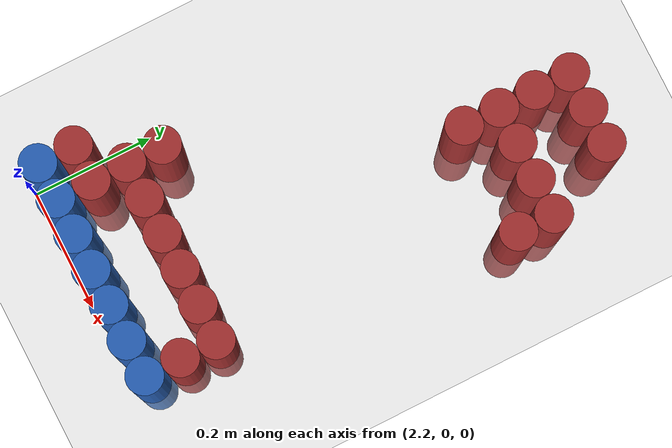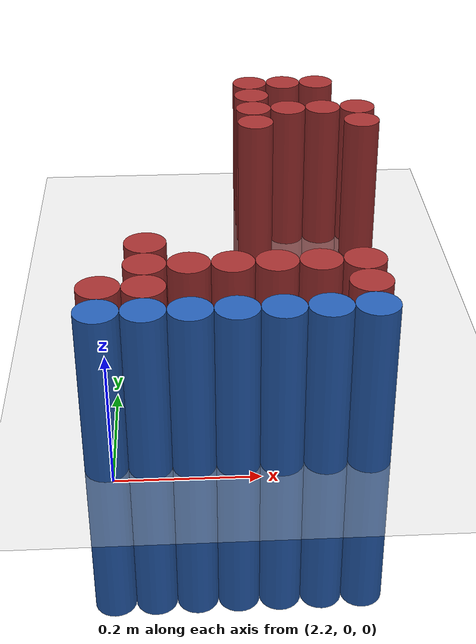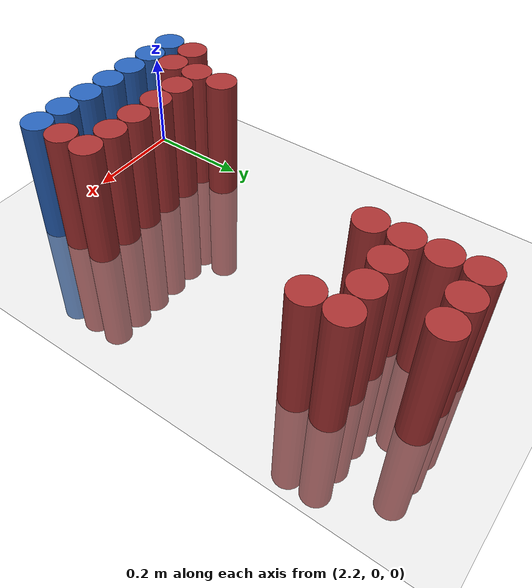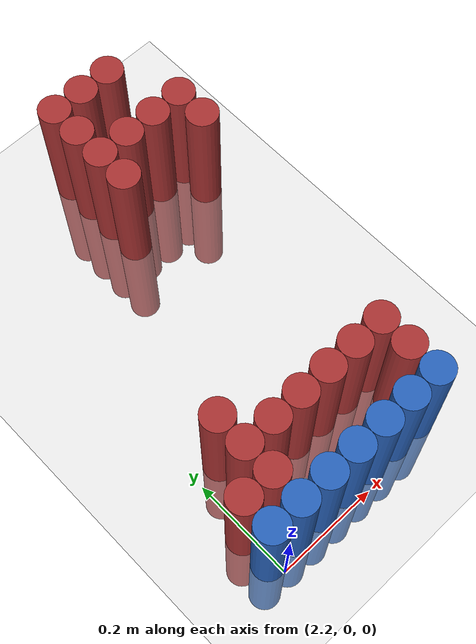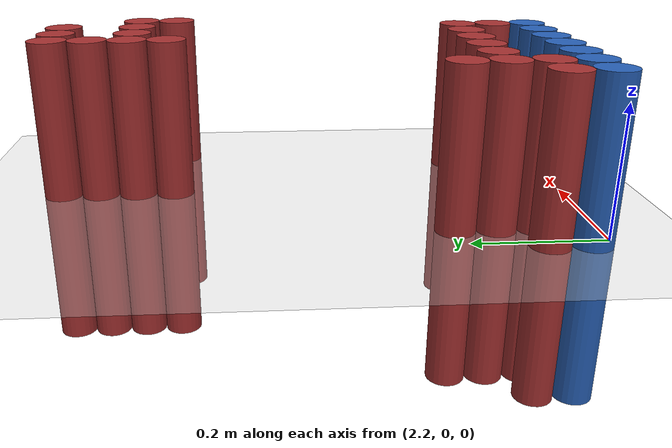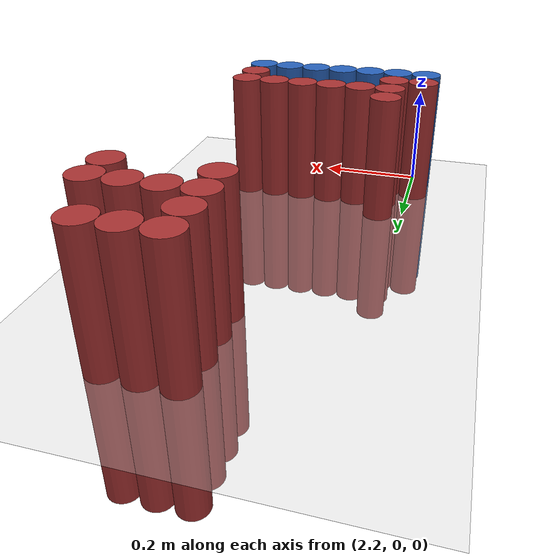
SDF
<sdf version="1.6">
 <world name="default">
  <model name="ground_plane">
   <static>1</static>
   <link name="link">
    <collision name="collision">
     <geometry><plane><normal>0 0 1</normal><size>100 100</size></plane></geometry>
     <surface><friction><ode><mu>100</mu><mu2>50</mu2></ode></friction></surface>
    </collision>
    <visual name="visual">
     <cast_shadows>0</cast_shadows>
     <geometry><plane><normal>0 0 1</normal><size>100 100</size></plane></geometry>
     <material>
      <script><uri>file://media/materials/scripts/gazebo.material</uri><name>Gazebo/Grey</name></script>
     </material>
    </visual>
   </link>
  </model>
  <model name="unit_cylinder_200">
   <static>1</static>
   <pose>2.430000 0.810000 0.000000 0.000000 0.000000 0.000000</pose>
   <link name="link">
    <inertial>
     <mass>1</mass>
     <inertia><ixx>0.145833</ixx><ixy>0</ixy><ixz>0</ixz><iyy>0.145833</iyy><iyz>0</iyz><izz>0.125</izz></inertia>
    </inertial>
    <collision name="collision">
     <geometry><cylinder><radius>0.030000</radius><length>0.5</length></cylinder></geometry>
    </collision>
    <visual name="visual">
     <geometry><cylinder><radius>0.030000</radius><length>0.5</length></cylinder></geometry>
     <material>
      <ambient>0.648000 0.192000 0.192000 1</ambient>
      <diffuse>0.648000 0.192000 0.192000 1</diffuse>
     </material>
     <material>
      <script><name>Gazebo/Grey</name><uri>file://media/materials/scripts/gazebo.material</uri></script>
     </material>
    </visual>
   </link>
  </model>
  <model name="unit_cylinder_201">
   <static>1</static>
   <pose>2.490000 0.810000 0.000000 0.000000 0.000000 0.000000</pose>
   <link name="link">
    <inertial>
     <mass>1</mass>
     <inertia><ixx>0.145833</ixx><ixy>0</ixy><ixz>0</ixz><iyy>0.145833</iyy><iyz>0</iyz><izz>0.125</izz></inertia>
    </inertial>
    <collision name="collision">
     <geometry><cylinder><radius>0.030000</radius><length>0.5</length></cylinder></geometry>
    </collision>
    <visual name="visual">
     <geometry><cylinder><radius>0.030000</radius><length>0.5</length></cylinder></geometry>
     <material>
      <ambient>0.648000 0.192000 0.192000 1</ambient>
      <diffuse>0.648000 0.192000 0.192000 1</diffuse>
     </material>
     <material>
      <script><name>Gazebo/Grey</name><uri>file://media/materials/scripts/gazebo.material</uri></script>
     </material>
    </visual>
   </link>
  </model>
  <model name="unit_cylinder_202">
   <static>1</static>
   <pose>2.550000 0.810000 0.000000 0.000000 0.000000 0.000000</pose>
   <link name="link">
    <inertial>
     <mass>1</mass>
     <inertia><ixx>0.145833</ixx><ixy>0</ixy><ixz>0</ixz><iyy>0.145833</iyy><iyz>0</iyz><izz>0.125</izz></inertia>
    </inertial>
    <collision name="collision">
     <geometry><cylinder><radius>0.030000</radius><length>0.5</length></cylinder></geometry>
    </collision>
    <visual name="visual">
     <geometry><cylinder><radius>0.030000</radius><length>0.5</length></cylinder></geometry>
     <material>
      <ambient>0.648000 0.192000 0.192000 1</ambient>
      <diffuse>0.648000 0.192000 0.192000 1</diffuse>
     </material>
     <material>
      <script><name>Gazebo/Grey</name><uri>file://media/materials/scripts/gazebo.material</uri></script>
     </material>
    </visual>
   </link>
  </model>
  <model name="unit_cylinder_209">
   <static>1</static>
   <pose>2.430000 0.750000 0.000000 0.000000 0.000000 0.000000</pose>
   <link name="link">
    <inertial>
     <mass>1</mass>
     <inertia><ixx>0.145833</ixx><ixy>0</ixy><ixz>0</ixz><iyy>0.145833</iyy><iyz>0</iyz><izz>0.125</izz></inertia>
    </inertial>
    <collision name="collision">
     <geometry><cylinder><radius>0.030000</radius><length>0.5</length></cylinder></geometry>
    </collision>
    <visual name="visual">
     <geometry><cylinder><radius>0.030000</radius><length>0.5</length></cylinder></geometry>
     <material>
      <ambient>0.648000 0.192000 0.192000 1</ambient>
      <diffuse>0.648000 0.192000 0.192000 1</diffuse>
     </material>
     <material>
      <script><name>Gazebo/Grey</name><uri>file://media/materials/scripts/gazebo.material</uri></script>
     </material>
    </visual>
   </link>
  </model>
  <model name="unit_cylinder_214">
   <static>1</static>
   <pose>2.430000 0.690000 0.000000 0.000000 0.000000 0.000000</pose>
   <link name="link">
    <inertial>
     <mass>1</mass>
     <inertia><ixx>0.145833</ixx><ixy>0</ixy><ixz>0</ixz><iyy>0.145833</iyy><iyz>0</iyz><izz>0.125</izz></inertia>
    </inertial>
    <collision name="collision">
     <geometry><cylinder><radius>0.030000</radius><length>0.5</length></cylinder></geometry>
    </collision>
    <visual name="visual">
     <geometry><cylinder><radius>0.030000</radius><length>0.5</length></cylinder></geometry>
     <material>
      <ambient>0.648000 0.192000 0.192000 1</ambient>
      <diffuse>0.648000 0.192000 0.192000 1</diffuse>
     </material>
     <material>
      <script><name>Gazebo/Grey</name><uri>file://media/materials/scripts/gazebo.material</uri></script>
     </material>
    </visual>
   </link>
  </model>
  <model name="unit_cylinder_215">
   <static>1</static>
   <pose>2.490000 0.690000 0.000000 0.000000 0.000000 0.000000</pose>
   <link name="link">
    <inertial>
     <mass>1</mass>
     <inertia><ixx>0.145833</ixx><ixy>0</ixy><ixz>0</ixz><iyy>0.145833</iyy><iyz>0</iyz><izz>0.125</izz></inertia>
    </inertial>
    <collision name="collision">
     <geometry><cylinder><radius>0.030000</radius><length>0.5</length></cylinder></geometry>
    </collision>
    <visual name="visual">
     <geometry><cylinder><radius>0.030000</radius><length>0.5</length></cylinder></geometry>
     <material>
      <ambient>0.648000 0.192000 0.192000 1</ambient>
      <diffuse>0.648000 0.192000 0.192000 1</diffuse>
     </material>
     <material>
      <script><name>Gazebo/Grey</name><uri>file://media/materials/scripts/gazebo.material</uri></script>
     </material>
    </visual>
   </link>
  </model>
  <model name="unit_cylinder_216">
   <static>1</static>
   <pose>2.550000 0.690000 0.000000 0.000000 0.000000 0.000000</pose>
   <link name="link">
    <inertial>
     <mass>1</mass>
     <inertia><ixx>0.145833</ixx><ixy>0</ixy><ixz>0</ixz><iyy>0.145833</iyy><iyz>0</iyz><izz>0.125</izz></inertia>
    </inertial>
    <collision name="collision">
     <geometry><cylinder><radius>0.030000</radius><length>0.5</length></cylinder></geometry>
    </collision>
    <visual name="visual">
     <geometry><cylinder><radius>0.030000</radius><length>0.5</length></cylinder></geometry>
     <material>
      <ambient>0.648000 0.192000 0.192000 1</ambient>
      <diffuse>0.648000 0.192000 0.192000 1</diffuse>
     </material>
     <material>
      <script><name>Gazebo/Grey</name><uri>file://media/materials/scripts/gazebo.material</uri></script>
     </material>
    </visual>
   </link>
  </model>
  <model name="unit_cylinder_217">
   <static>1</static>
   <pose>2.610000 0.690000 0.000000 0.000000 0.000000 0.000000</pose>
   <link name="link">
    <inertial>
     <mass>1</mass>
     <inertia><ixx>0.145833</ixx><ixy>0</ixy><ixz>0</ixz><iyy>0.145833</iyy><iyz>0</iyz><izz>0.125</izz></inertia>
    </inertial>
    <collision name="collision">
     <geometry><cylinder><radius>0.030000</radius><length>0.5</length></cylinder></geometry>
    </collision>
    <visual name="visual">
     <geometry><cylinder><radius>0.030000</radius><length>0.5</length></cylinder></geometry>
     <material>
      <ambient>0.648000 0.192000 0.192000 1</ambient>
      <diffuse>0.648000 0.192000 0.192000 1</diffuse>
     </material>
     <material>
      <script><name>Gazebo/Grey</name><uri>file://media/materials/scripts/gazebo.material</uri></script>
     </material>
    </visual>
   </link>
  </model>
  <model name="unit_cylinder_223">
   <static>1</static>
   <pose>2.430000 0.630000 0.000000 0.000000 0.000000 0.000000</pose>
   <link name="link">
    <inertial>
     <mass>1</mass>
     <inertia><ixx>0.145833</ixx><ixy>0</ixy><ixz>0</ixz><iyy>0.145833</iyy><iyz>0</iyz><izz>0.125</izz></inertia>
    </inertial>
    <collision name="collision">
     <geometry><cylinder><radius>0.030000</radius><length>0.5</length></cylinder></geometry>
    </collision>
    <visual name="visual">
     <geometry><cylinder><radius>0.030000</radius><length>0.5</length></cylinder></geometry>
     <material>
      <ambient>0.648000 0.192000 0.192000 1</ambient>
      <diffuse>0.648000 0.192000 0.192000 1</diffuse>
     </material>
     <material>
      <script><name>Gazebo/Grey</name><uri>file://media/materials/scripts/gazebo.material</uri></script>
     </material>
    </visual>
   </link>
  </model>
  <model name="unit_cylinder_224">
   <static>1</static>
   <pose>2.610000 0.630000 0.000000 0.000000 0.000000 0.000000</pose>
   <link name="link">
    <inertial>
     <mass>1</mass>
     <inertia><ixx>0.145833</ixx><ixy>0</ixy><ixz>0</ixz><iyy>0.145833</iyy><iyz>0</iyz><izz>0.125</izz></inertia>
    </inertial>
    <collision name="collision">
     <geometry><cylinder><radius>0.030000</radius><length>0.5</length></cylinder></geometry>
    </collision>
    <visual name="visual">
     <geometry><cylinder><radius>0.030000</radius><length>0.5</length></cylinder></geometry>
     <material>
      <ambient>0.648000 0.192000 0.192000 1</ambient>
      <diffuse>0.648000 0.192000 0.192000 1</diffuse>
     </material>
     <material>
      <script><name>Gazebo/Grey</name><uri>file://media/materials/scripts/gazebo.material</uri></script>
     </material>
    </visual>
   </link>
  </model>
  <model name="unit_cylinder_266">
   <static>1</static>
   <pose>2.250000 0.210000 0.000000 0.000000 0.000000 0.000000</pose>
   <link name="link">
    <inertial>
     <mass>1</mass>
     <inertia><ixx>0.145833</ixx><ixy>0</ixy><ixz>0</ixz><iyy>0.145833</iyy><iyz>0</iyz><izz>0.125</izz></inertia>
    </inertial>
    <collision name="collision">
     <geometry><cylinder><radius>0.030000</radius><length>0.5</length></cylinder></geometry>
    </collision>
    <visual name="visual">
     <geometry><cylinder><radius>0.030000</radius><length>0.5</length></cylinder></geometry>
     <material>
      <ambient>0.648000 0.192000 0.192000 1</ambient>
      <diffuse>0.648000 0.192000 0.192000 1</diffuse>
     </material>
     <material>
      <script><name>Gazebo/Grey</name><uri>file://media/materials/scripts/gazebo.material</uri></script>
     </material>
    </visual>
   </link>
  </model>
  <model name="unit_cylinder_273">
   <static>1</static>
   <pose>2.250000 0.150000 0.000000 0.000000 0.000000 0.000000</pose>
   <link name="link">
    <inertial>
     <mass>1</mass>
     <inertia><ixx>0.145833</ixx><ixy>0</ixy><ixz>0</ixz><iyy>0.145833</iyy><iyz>0</iyz><izz>0.125</izz></inertia>
    </inertial>
    <collision name="collision">
     <geometry><cylinder><radius>0.030000</radius><length>0.5</length></cylinder></geometry>
    </collision>
    <visual name="visual">
     <geometry><cylinder><radius>0.030000</radius><length>0.5</length></cylinder></geometry>
     <material>
      <ambient>0.648000 0.192000 0.192000 1</ambient>
      <diffuse>0.648000 0.192000 0.192000 1</diffuse>
     </material>
     <material>
      <script><name>Gazebo/Grey</name><uri>file://media/materials/scripts/gazebo.material</uri></script>
     </material>
    </visual>
   </link>
  </model>
  <model name="unit_cylinder_274">
   <static>1</static>
   <pose>2.310000 0.150000 0.000000 0.000000 0.000000 0.000000</pose>
   <link name="link">
    <inertial>
     <mass>1</mass>
     <inertia><ixx>0.145833</ixx><ixy>0</ixy><ixz>0</ixz><iyy>0.145833</iyy><iyz>0</iyz><izz>0.125</izz></inertia>
    </inertial>
    <collision name="collision">
     <geometry><cylinder><radius>0.030000</radius><length>0.5</length></cylinder></geometry>
    </collision>
    <visual name="visual">
     <geometry><cylinder><radius>0.030000</radius><length>0.5</length></cylinder></geometry>
     <material>
      <ambient>0.648000 0.192000 0.192000 1</ambient>
      <diffuse>0.648000 0.192000 0.192000 1</diffuse>
     </material>
     <material>
      <script><name>Gazebo/Grey</name><uri>file://media/materials/scripts/gazebo.material</uri></script>
     </material>
    </visual>
   </link>
  </model>
  <model name="unit_cylinder_275">
   <static>1</static>
   <pose>2.370000 0.150000 0.000000 0.000000 0.000000 0.000000</pose>
   <link name="link">
    <inertial>
     <mass>1</mass>
     <inertia><ixx>0.145833</ixx><ixy>0</ixy><ixz>0</ixz><iyy>0.145833</iyy><iyz>0</iyz><izz>0.125</izz></inertia>
    </inertial>
    <collision name="collision">
     <geometry><cylinder><radius>0.030000</radius><length>0.5</length></cylinder></geometry>
    </collision>
    <visual name="visual">
     <geometry><cylinder><radius>0.030000</radius><length>0.5</length></cylinder></geometry>
     <material>
      <ambient>0.648000 0.192000 0.192000 1</ambient>
      <diffuse>0.648000 0.192000 0.192000 1</diffuse>
     </material>
     <material>
      <script><name>Gazebo/Grey</name><uri>file://media/materials/scripts/gazebo.material</uri></script>
     </material>
    </visual>
   </link>
  </model>
  <model name="unit_cylinder_276">
   <static>1</static>
   <pose>2.430000 0.150000 0.000000 0.000000 0.000000 0.000000</pose>
   <link name="link">
    <inertial>
     <mass>1</mass>
     <inertia><ixx>0.145833</ixx><ixy>0</ixy><ixz>0</ixz><iyy>0.145833</iyy><iyz>0</iyz><izz>0.125</izz></inertia>
    </inertial>
    <collision name="collision">
     <geometry><cylinder><radius>0.030000</radius><length>0.5</length></cylinder></geometry>
    </collision>
    <visual name="visual">
     <geometry><cylinder><radius>0.030000</radius><length>0.5</length></cylinder></geometry>
     <material>
      <ambient>0.648000 0.192000 0.192000 1</ambient>
      <diffuse>0.648000 0.192000 0.192000 1</diffuse>
     </material>
     <material>
      <script><name>Gazebo/Grey</name><uri>file://media/materials/scripts/gazebo.material</uri></script>
     </material>
    </visual>
   </link>
  </model>
  <model name="unit_cylinder_277">
   <static>1</static>
   <pose>2.490000 0.150000 0.000000 0.000000 0.000000 0.000000</pose>
   <link name="link">
    <inertial>
     <mass>1</mass>
     <inertia><ixx>0.145833</ixx><ixy>0</ixy><ixz>0</ixz><iyy>0.145833</iyy><iyz>0</iyz><izz>0.125</izz></inertia>
    </inertial>
    <collision name="collision">
     <geometry><cylinder><radius>0.030000</radius><length>0.5</length></cylinder></geometry>
    </collision>
    <visual name="visual">
     <geometry><cylinder><radius>0.030000</radius><length>0.5</length></cylinder></geometry>
     <material>
      <ambient>0.648000 0.192000 0.192000 1</ambient>
      <diffuse>0.648000 0.192000 0.192000 1</diffuse>
     </material>
     <material>
      <script><name>Gazebo/Grey</name><uri>file://media/materials/scripts/gazebo.material</uri></script>
     </material>
    </visual>
   </link>
  </model>
  <model name="unit_cylinder_278">
   <static>1</static>
   <pose>2.550000 0.150000 0.000000 0.000000 0.000000 0.000000</pose>
   <link name="link">
    <inertial>
     <mass>1</mass>
     <inertia><ixx>0.145833</ixx><ixy>0</ixy><ixz>0</ixz><iyy>0.145833</iyy><iyz>0</iyz><izz>0.125</izz></inertia>
    </inertial>
    <collision name="collision">
     <geometry><cylinder><radius>0.030000</radius><length>0.5</length></cylinder></geometry>
    </collision>
    <visual name="visual">
     <geometry><cylinder><radius>0.030000</radius><length>0.5</length></cylinder></geometry>
     <material>
      <ambient>0.648000 0.192000 0.192000 1</ambient>
      <diffuse>0.648000 0.192000 0.192000 1</diffuse>
     </material>
     <material>
      <script><name>Gazebo/Grey</name><uri>file://media/materials/scripts/gazebo.material</uri></script>
     </material>
    </visual>
   </link>
  </model>
  <model name="unit_cylinder_282">
   <static>1</static>
   <pose>2.190000 0.090000 0.000000 0.000000 0.000000 0.000000</pose>
   <link name="link">
    <inertial>
     <mass>1</mass>
     <inertia><ixx>0.145833</ixx><ixy>0</ixy><ixz>0</ixz><iyy>0.145833</iyy><iyz>0</iyz><izz>0.125</izz></inertia>
    </inertial>
    <collision name="collision">
     <geometry><cylinder><radius>0.030000</radius><length>0.5</length></cylinder></geometry>
    </collision>
    <visual name="visual">
     <geometry><cylinder><radius>0.030000</radius><length>0.5</length></cylinder></geometry>
     <material>
      <ambient>0.648000 0.192000 0.192000 1</ambient>
      <diffuse>0.648000 0.192000 0.192000 1</diffuse>
     </material>
     <material>
      <script><name>Gazebo/Grey</name><uri>file://media/materials/scripts/gazebo.material</uri></script>
     </material>
    </visual>
   </link>
  </model>
  <model name="unit_cylinder_283">
   <static>1</static>
   <pose>2.250000 0.090000 0.000000 0.000000 0.000000 0.000000</pose>
   <link name="link">
    <inertial>
     <mass>1</mass>
     <inertia><ixx>0.145833</ixx><ixy>0</ixy><ixz>0</ixz><iyy>0.145833</iyy><iyz>0</iyz><izz>0.125</izz></inertia>
    </inertial>
    <collision name="collision">
     <geometry><cylinder><radius>0.030000</radius><length>0.5</length></cylinder></geometry>
    </collision>
    <visual name="visual">
     <geometry><cylinder><radius>0.030000</radius><length>0.5</length></cylinder></geometry>
     <material>
      <ambient>0.648000 0.192000 0.192000 1</ambient>
      <diffuse>0.648000 0.192000 0.192000 1</diffuse>
     </material>
     <material>
      <script><name>Gazebo/Grey</name><uri>file://media/materials/scripts/gazebo.material</uri></script>
     </material>
    </visual>
   </link>
  </model>
  <model name="unit_cylinder_284">
   <static>1</static>
   <pose>2.550000 0.090000 0.000000 0.000000 0.000000 0.000000</pose>
   <link name="link">
    <inertial>
     <mass>1</mass>
     <inertia><ixx>0.145833</ixx><ixy>0</ixy><ixz>0</ixz><iyy>0.145833</iyy><iyz>0</iyz><izz>0.125</izz></inertia>
    </inertial>
    <collision name="collision">
     <geometry><cylinder><radius>0.030000</radius><length>0.5</length></cylinder></geometry>
    </collision>
    <visual name="visual">
     <geometry><cylinder><radius>0.030000</radius><length>0.5</length></cylinder></geometry>
     <material>
      <ambient>0.648000 0.192000 0.192000 1</ambient>
      <diffuse>0.648000 0.192000 0.192000 1</diffuse>
     </material>
     <material>
      <script><name>Gazebo/Grey</name><uri>file://media/materials/scripts/gazebo.material</uri></script>
     </material>
    </visual>
   </link>
  </model>
  <model name="unit_cylinder_297">
   <static>1</static>
   <pose>2.190000 0.030000 0.000000 0.000000 0.000000 0.000000</pose>
   <link name="link">
    <inertial>
     <mass>1</mass>
     <inertia><ixx>0.145833</ixx><ixy>0</ixy><ixz>0</ixz><iyy>0.145833</iyy><iyz>0</iyz><izz>0.125</izz></inertia>
    </inertial>
    <collision name="collision">
     <geometry><cylinder><radius>0.030000</radius><length>0.5</length></cylinder></geometry>
    </collision>
    <visual name="visual">
     <geometry><cylinder><radius>0.030000</radius><length>0.5</length></cylinder></geometry>
     <material>
      <ambient>0.152000 0.379000 0.720000 1</ambient>
      <diffuse>0.152000 0.379000 0.720000 1</diffuse>
     </material>
     <material>
      <script><name>Gazebo/Grey</name><uri>file://media/materials/scripts/gazebo.material</uri></script>
     </material>
    </visual>
   </link>
  </model>
  <model name="unit_cylinder_298">
   <static>1</static>
   <pose>2.250000 0.030000 0.000000 0.000000 0.000000 0.000000</pose>
   <link name="link">
    <inertial>
     <mass>1</mass>
     <inertia><ixx>0.145833</ixx><ixy>0</ixy><ixz>0</ixz><iyy>0.145833</iyy><iyz>0</iyz><izz>0.125</izz></inertia>
    </inertial>
    <collision name="collision">
     <geometry><cylinder><radius>0.030000</radius><length>0.5</length></cylinder></geometry>
    </collision>
    <visual name="visual">
     <geometry><cylinder><radius>0.030000</radius><length>0.5</length></cylinder></geometry>
     <material>
      <ambient>0.152000 0.379000 0.720000 1</ambient>
      <diffuse>0.152000 0.379000 0.720000 1</diffuse>
     </material>
     <material>
      <script><name>Gazebo/Grey</name><uri>file://media/materials/scripts/gazebo.material</uri></script>
     </material>
    </visual>
   </link>
  </model>
  <model name="unit_cylinder_299">
   <static>1</static>
   <pose>2.310000 0.030000 0.000000 0.000000 0.000000 0.000000</pose>
   <link name="link">
    <inertial>
     <mass>1</mass>
     <inertia><ixx>0.145833</ixx><ixy>0</ixy><ixz>0</ixz><iyy>0.145833</iyy><iyz>0</iyz><izz>0.125</izz></inertia>
    </inertial>
    <collision name="collision">
     <geometry><cylinder><radius>0.030000</radius><length>0.5</length></cylinder></geometry>
    </collision>
    <visual name="visual">
     <geometry><cylinder><radius>0.030000</radius><length>0.5</length></cylinder></geometry>
     <material>
      <ambient>0.152000 0.379000 0.720000 1</ambient>
      <diffuse>0.152000 0.379000 0.720000 1</diffuse>
     </material>
     <material>
      <script><name>Gazebo/Grey</name><uri>file://media/materials/scripts/gazebo.material</uri></script>
     </material>
    </visual>
   </link>
  </model>
  <model name="unit_cylinder_300">
   <static>1</static>
   <pose>2.370000 0.030000 0.000000 0.000000 0.000000 0.000000</pose>
   <link name="link">
    <inertial>
     <mass>1</mass>
     <inertia><ixx>0.145833</ixx><ixy>0</ixy><ixz>0</ixz><iyy>0.145833</iyy><iyz>0</iyz><izz>0.125</izz></inertia>
    </inertial>
    <collision name="collision">
     <geometry><cylinder><radius>0.030000</radius><length>0.5</length></cylinder></geometry>
    </collision>
    <visual name="visual">
     <geometry><cylinder><radius>0.030000</radius><length>0.5</length></cylinder></geometry>
     <material>
      <ambient>0.152000 0.379000 0.720000 1</ambient>
      <diffuse>0.152000 0.379000 0.720000 1</diffuse>
     </material>
     <material>
      <script><name>Gazebo/Grey</name><uri>file://media/materials/scripts/gazebo.material</uri></script>
     </material>
    </visual>
   </link>
  </model>
  <model name="unit_cylinder_301">
   <static>1</static>
   <pose>2.430000 0.030000 0.000000 0.000000 0.000000 0.000000</pose>
   <link name="link">
    <inertial>
     <mass>1</mass>
     <inertia><ixx>0.145833</ixx><ixy>0</ixy><ixz>0</ixz><iyy>0.145833</iyy><iyz>0</iyz><izz>0.125</izz></inertia>
    </inertial>
    <collision name="collision">
     <geometry><cylinder><radius>0.030000</radius><length>0.5</length></cylinder></geometry>
    </collision>
    <visual name="visual">
     <geometry><cylinder><radius>0.030000</radius><length>0.5</length></cylinder></geometry>
     <material>
      <ambient>0.152000 0.379000 0.720000 1</ambient>
      <diffuse>0.152000 0.379000 0.720000 1</diffuse>
     </material>
     <material>
      <script><name>Gazebo/Grey</name><uri>file://media/materials/scripts/gazebo.material</uri></script>
     </material>
    </visual>
   </link>
  </model>
  <model name="unit_cylinder_302">
   <static>1</static>
   <pose>2.490000 0.030000 0.000000 0.000000 0.000000 0.000000</pose>
   <link name="link">
    <inertial>
     <mass>1</mass>
     <inertia><ixx>0.145833</ixx><ixy>0</ixy><ixz>0</ixz><iyy>0.145833</iyy><iyz>0</iyz><izz>0.125</izz></inertia>
    </inertial>
    <collision name="collision">
     <geometry><cylinder><radius>0.030000</radius><length>0.5</length></cylinder></geometry>
    </collision>
    <visual name="visual">
     <geometry><cylinder><radius>0.030000</radius><length>0.5</length></cylinder></geometry>
     <material>
      <ambient>0.152000 0.379000 0.720000 1</ambient>
      <diffuse>0.152000 0.379000 0.720000 1</diffuse>
     </material>
     <material>
      <script><name>Gazebo/Grey</name><uri>file://media/materials/scripts/gazebo.material</uri></script>
     </material>
    </visual>
   </link>
  </model>
  <model name="unit_cylinder_303">
   <static>1</static>
   <pose>2.550000 0.030000 0.000000 0.000000 0.000000 0.000000</pose>
   <link name="link">
    <inertial>
     <mass>1</mass>
     <inertia><ixx>0.145833</ixx><ixy>0</ixy><ixz>0</ixz><iyy>0.145833</iyy><iyz>0</iyz><izz>0.125</izz></inertia>
    </inertial>
    <collision name="collision">
     <geometry><cylinder><radius>0.030000</radius><length>0.5</length></cylinder></geometry>
    </collision>
    <visual name="visual">
     <geometry><cylinder><radius>0.030000</radius><length>0.5</length></cylinder></geometry>
     <material>
      <ambient>0.152000 0.379000 0.720000 1</ambient>
      <diffuse>0.152000 0.379000 0.720000 1</diffuse>
     </material>
     <material>
      <script><name>Gazebo/Grey</name><uri>file://media/materials/scripts/gazebo.material</uri></script>
     </material>
    </visual>
   </link>
  </model>
 </world>
</sdf>
